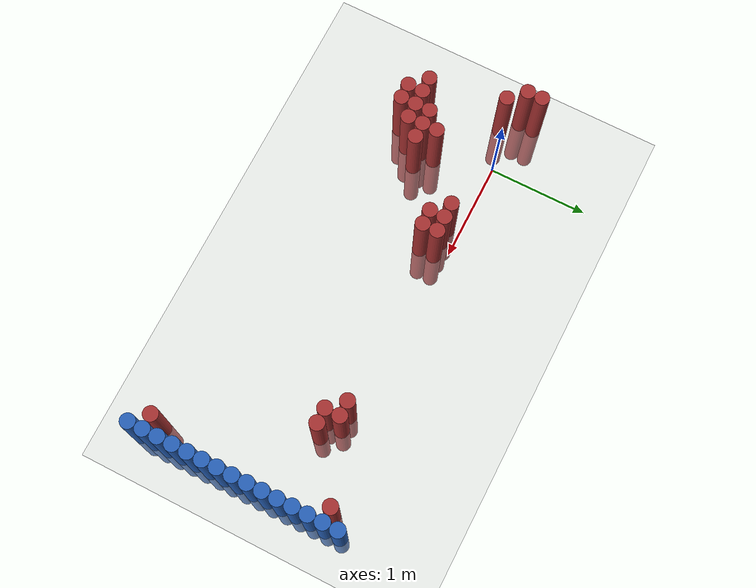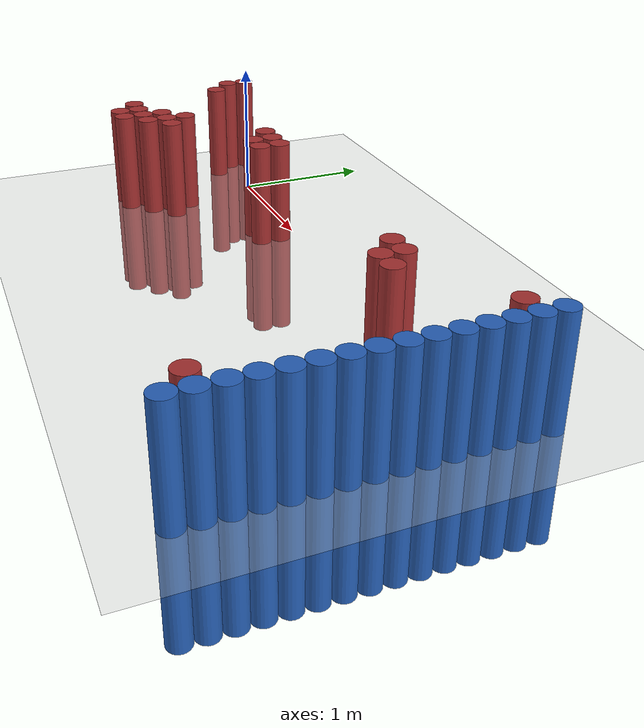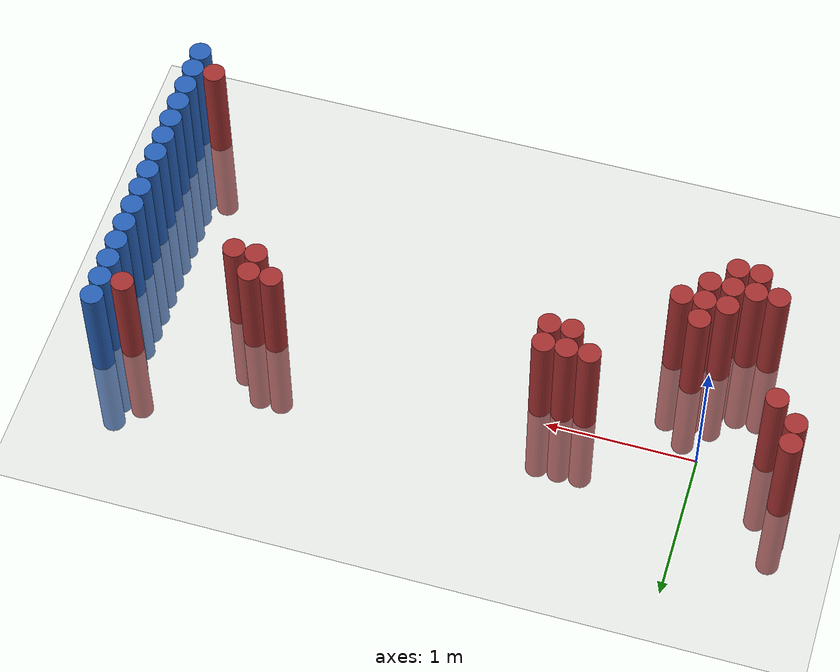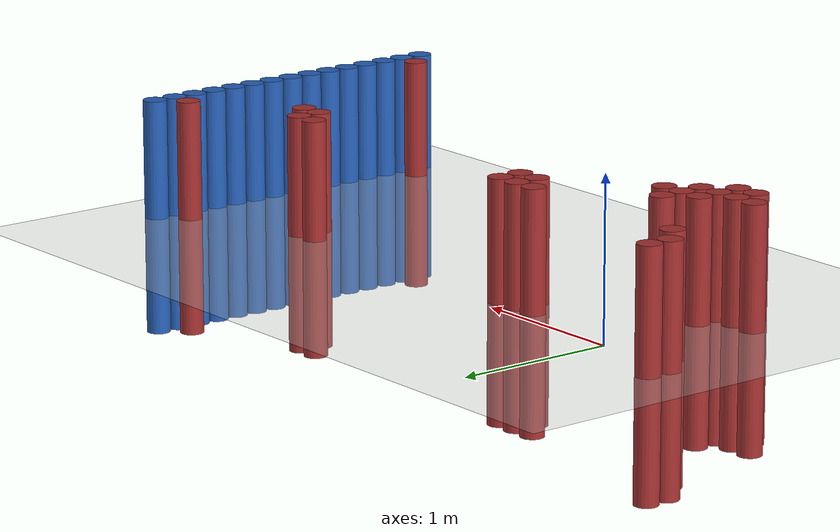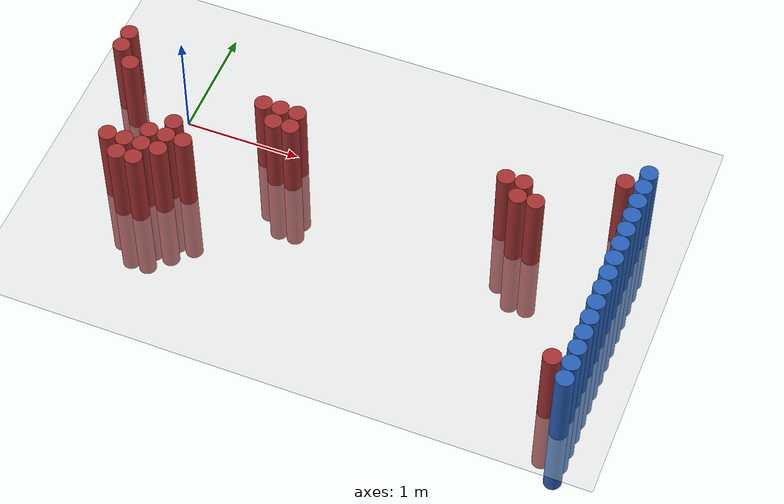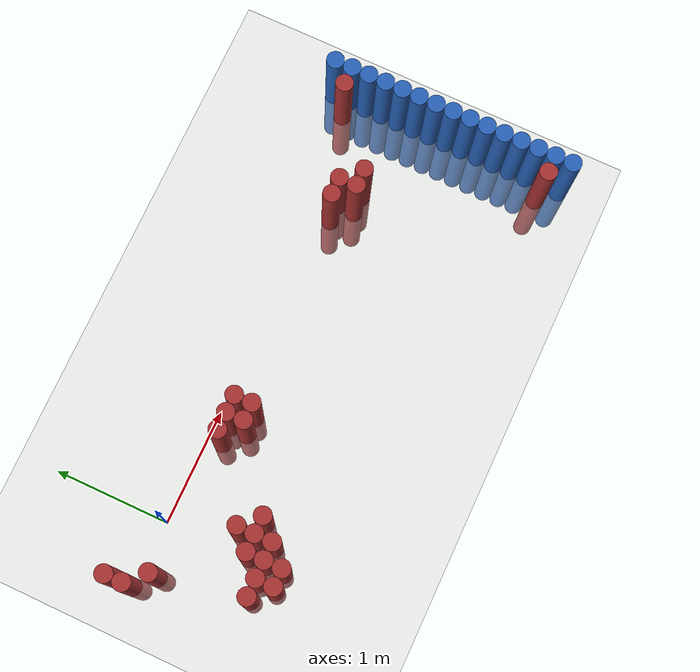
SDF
<sdf version="1.6">
 <world name="default">
  <model name="ground_plane">
   <static>1</static>
   <link name="link">
    <collision name="collision">
     <geometry><plane><normal>0 0 1</normal><size>100 100</size></plane></geometry>
     <surface><friction><ode><mu>100</mu><mu2>50</mu2></ode></friction></surface>
    </collision>
    <visual name="visual">
     <cast_shadows>0</cast_shadows>
     <geometry><plane><normal>0 0 1</normal><size>100 100</size></plane></geometry>
     <material>
      <script><uri>file://media/materials/scripts/gazebo.material</uri><name>Gazebo/Grey</name></script>
     </material>
    </visual>
   </link>
  </model>
  <model name="unit_cylinder_92">
   <static>1</static>
   <pose>3.925000 -1.625000 0.000000 0.000000 0.000000 0.000000</pose>
   <link name="link">
    <inertial>
     <mass>1</mass>
     <inertia><ixx>0.145833</ixx><ixy>0</ixy><ixz>0</ixz><iyy>0.145833</iyy><iyz>0</iyz><izz>0.125</izz></inertia>
    </inertial>
    <collision name="collision">
     <geometry><cylinder><radius>0.075000</radius><length>1.5</length></cylinder></geometry>
    </collision>
    <visual name="visual">
     <geometry><cylinder><radius>0.075000</radius><length>1.5</length></cylinder></geometry>
     <material>
      <ambient>0.152000 0.379000 0.720000 1</ambient>
      <diffuse>0.152000 0.379000 0.720000 1</diffuse>
     </material>
     <material>
      <script><name>Gazebo/Grey</name><uri>file://media/materials/scripts/gazebo.material</uri></script>
     </material>
    </visual>
   </link>
  </model>
  <model name="unit_cylinder_94">
   <static>1</static>
   <pose>3.925000 -1.475000 0.000000 0.000000 0.000000 0.000000</pose>
   <link name="link">
    <inertial>
     <mass>1</mass>
     <inertia><ixx>0.145833</ixx><ixy>0</ixy><ixz>0</ixz><iyy>0.145833</iyy><iyz>0</iyz><izz>0.125</izz></inertia>
    </inertial>
    <collision name="collision">
     <geometry><cylinder><radius>0.075000</radius><length>1.5</length></cylinder></geometry>
    </collision>
    <visual name="visual">
     <geometry><cylinder><radius>0.075000</radius><length>1.5</length></cylinder></geometry>
     <material>
      <ambient>0.152000 0.379000 0.720000 1</ambient>
      <diffuse>0.152000 0.379000 0.720000 1</diffuse>
     </material>
     <material>
      <script><name>Gazebo/Grey</name><uri>file://media/materials/scripts/gazebo.material</uri></script>
     </material>
    </visual>
   </link>
  </model>
  <model name="unit_cylinder_96">
   <static>1</static>
   <pose>3.925000 -1.325000 0.000000 0.000000 0.000000 0.000000</pose>
   <link name="link">
    <inertial>
     <mass>1</mass>
     <inertia><ixx>0.145833</ixx><ixy>0</ixy><ixz>0</ixz><iyy>0.145833</iyy><iyz>0</iyz><izz>0.125</izz></inertia>
    </inertial>
    <collision name="collision">
     <geometry><cylinder><radius>0.075000</radius><length>1.5</length></cylinder></geometry>
    </collision>
    <visual name="visual">
     <geometry><cylinder><radius>0.075000</radius><length>1.5</length></cylinder></geometry>
     <material>
      <ambient>0.152000 0.379000 0.720000 1</ambient>
      <diffuse>0.152000 0.379000 0.720000 1</diffuse>
     </material>
     <material>
      <script><name>Gazebo/Grey</name><uri>file://media/materials/scripts/gazebo.material</uri></script>
     </material>
    </visual>
   </link>
  </model>
  <model name="unit_cylinder_98">
   <static>1</static>
   <pose>3.925000 -1.175000 0.000000 0.000000 0.000000 0.000000</pose>
   <link name="link">
    <inertial>
     <mass>1</mass>
     <inertia><ixx>0.145833</ixx><ixy>0</ixy><ixz>0</ixz><iyy>0.145833</iyy><iyz>0</iyz><izz>0.125</izz></inertia>
    </inertial>
    <collision name="collision">
     <geometry><cylinder><radius>0.075000</radius><length>1.5</length></cylinder></geometry>
    </collision>
    <visual name="visual">
     <geometry><cylinder><radius>0.075000</radius><length>1.5</length></cylinder></geometry>
     <material>
      <ambient>0.152000 0.379000 0.720000 1</ambient>
      <diffuse>0.152000 0.379000 0.720000 1</diffuse>
     </material>
     <material>
      <script><name>Gazebo/Grey</name><uri>file://media/materials/scripts/gazebo.material</uri></script>
     </material>
    </visual>
   </link>
  </model>
  <model name="unit_cylinder_100">
   <static>1</static>
   <pose>3.925000 -1.025000 0.000000 0.000000 0.000000 0.000000</pose>
   <link name="link">
    <inertial>
     <mass>1</mass>
     <inertia><ixx>0.145833</ixx><ixy>0</ixy><ixz>0</ixz><iyy>0.145833</iyy><iyz>0</iyz><izz>0.125</izz></inertia>
    </inertial>
    <collision name="collision">
     <geometry><cylinder><radius>0.075000</radius><length>1.5</length></cylinder></geometry>
    </collision>
    <visual name="visual">
     <geometry><cylinder><radius>0.075000</radius><length>1.5</length></cylinder></geometry>
     <material>
      <ambient>0.152000 0.379000 0.720000 1</ambient>
      <diffuse>0.152000 0.379000 0.720000 1</diffuse>
     </material>
     <material>
      <script><name>Gazebo/Grey</name><uri>file://media/materials/scripts/gazebo.material</uri></script>
     </material>
    </visual>
   </link>
  </model>
  <model name="unit_cylinder_102">
   <static>1</static>
   <pose>3.925000 -0.875000 0.000000 0.000000 0.000000 0.000000</pose>
   <link name="link">
    <inertial>
     <mass>1</mass>
     <inertia><ixx>0.145833</ixx><ixy>0</ixy><ixz>0</ixz><iyy>0.145833</iyy><iyz>0</iyz><izz>0.125</izz></inertia>
    </inertial>
    <collision name="collision">
     <geometry><cylinder><radius>0.075000</radius><length>1.5</length></cylinder></geometry>
    </collision>
    <visual name="visual">
     <geometry><cylinder><radius>0.075000</radius><length>1.5</length></cylinder></geometry>
     <material>
      <ambient>0.152000 0.379000 0.720000 1</ambient>
      <diffuse>0.152000 0.379000 0.720000 1</diffuse>
     </material>
     <material>
      <script><name>Gazebo/Grey</name><uri>file://media/materials/scripts/gazebo.material</uri></script>
     </material>
    </visual>
   </link>
  </model>
  <model name="unit_cylinder_104">
   <static>1</static>
   <pose>3.925000 -0.725000 0.000000 0.000000 0.000000 0.000000</pose>
   <link name="link">
    <inertial>
     <mass>1</mass>
     <inertia><ixx>0.145833</ixx><ixy>0</ixy><ixz>0</ixz><iyy>0.145833</iyy><iyz>0</iyz><izz>0.125</izz></inertia>
    </inertial>
    <collision name="collision">
     <geometry><cylinder><radius>0.075000</radius><length>1.5</length></cylinder></geometry>
    </collision>
    <visual name="visual">
     <geometry><cylinder><radius>0.075000</radius><length>1.5</length></cylinder></geometry>
     <material>
      <ambient>0.152000 0.379000 0.720000 1</ambient>
      <diffuse>0.152000 0.379000 0.720000 1</diffuse>
     </material>
     <material>
      <script><name>Gazebo/Grey</name><uri>file://media/materials/scripts/gazebo.material</uri></script>
     </material>
    </visual>
   </link>
  </model>
  <model name="unit_cylinder_106">
   <static>1</static>
   <pose>3.925000 -0.575000 0.000000 0.000000 0.000000 0.000000</pose>
   <link name="link">
    <inertial>
     <mass>1</mass>
     <inertia><ixx>0.145833</ixx><ixy>0</ixy><ixz>0</ixz><iyy>0.145833</iyy><iyz>0</iyz><izz>0.125</izz></inertia>
    </inertial>
    <collision name="collision">
     <geometry><cylinder><radius>0.075000</radius><length>1.5</length></cylinder></geometry>
    </collision>
    <visual name="visual">
     <geometry><cylinder><radius>0.075000</radius><length>1.5</length></cylinder></geometry>
     <material>
      <ambient>0.152000 0.379000 0.720000 1</ambient>
      <diffuse>0.152000 0.379000 0.720000 1</diffuse>
     </material>
     <material>
      <script><name>Gazebo/Grey</name><uri>file://media/materials/scripts/gazebo.material</uri></script>
     </material>
    </visual>
   </link>
  </model>
  <model name="unit_cylinder_108">
   <static>1</static>
   <pose>3.925000 -0.425000 0.000000 0.000000 0.000000 0.000000</pose>
   <link name="link">
    <inertial>
     <mass>1</mass>
     <inertia><ixx>0.145833</ixx><ixy>0</ixy><ixz>0</ixz><iyy>0.145833</iyy><iyz>0</iyz><izz>0.125</izz></inertia>
    </inertial>
    <collision name="collision">
     <geometry><cylinder><radius>0.075000</radius><length>1.5</length></cylinder></geometry>
    </collision>
    <visual name="visual">
     <geometry><cylinder><radius>0.075000</radius><length>1.5</length></cylinder></geometry>
     <material>
      <ambient>0.152000 0.379000 0.720000 1</ambient>
      <diffuse>0.152000 0.379000 0.720000 1</diffuse>
     </material>
     <material>
      <script><name>Gazebo/Grey</name><uri>file://media/materials/scripts/gazebo.material</uri></script>
     </material>
    </visual>
   </link>
  </model>
  <model name="unit_cylinder_110">
   <static>1</static>
   <pose>3.925000 -0.275000 0.000000 0.000000 0.000000 0.000000</pose>
   <link name="link">
    <inertial>
     <mass>1</mass>
     <inertia><ixx>0.145833</ixx><ixy>0</ixy><ixz>0</ixz><iyy>0.145833</iyy><iyz>0</iyz><izz>0.125</izz></inertia>
    </inertial>
    <collision name="collision">
     <geometry><cylinder><radius>0.075000</radius><length>1.5</length></cylinder></geometry>
    </collision>
    <visual name="visual">
     <geometry><cylinder><radius>0.075000</radius><length>1.5</length></cylinder></geometry>
     <material>
      <ambient>0.152000 0.379000 0.720000 1</ambient>
      <diffuse>0.152000 0.379000 0.720000 1</diffuse>
     </material>
     <material>
      <script><name>Gazebo/Grey</name><uri>file://media/materials/scripts/gazebo.material</uri></script>
     </material>
    </visual>
   </link>
  </model>
  <model name="unit_cylinder_112">
   <static>1</static>
   <pose>3.925000 -0.125000 0.000000 0.000000 0.000000 0.000000</pose>
   <link name="link">
    <inertial>
     <mass>1</mass>
     <inertia><ixx>0.145833</ixx><ixy>0</ixy><ixz>0</ixz><iyy>0.145833</iyy><iyz>0</iyz><izz>0.125</izz></inertia>
    </inertial>
    <collision name="collision">
     <geometry><cylinder><radius>0.075000</radius><length>1.5</length></cylinder></geometry>
    </collision>
    <visual name="visual">
     <geometry><cylinder><radius>0.075000</radius><length>1.5</length></cylinder></geometry>
     <material>
      <ambient>0.152000 0.379000 0.720000 1</ambient>
      <diffuse>0.152000 0.379000 0.720000 1</diffuse>
     </material>
     <material>
      <script><name>Gazebo/Grey</name><uri>file://media/materials/scripts/gazebo.material</uri></script>
     </material>
    </visual>
   </link>
  </model>
  <model name="unit_cylinder_114">
   <static>1</static>
   <pose>3.925000 0.025000 0.000000 0.000000 0.000000 0.000000</pose>
   <link name="link">
    <inertial>
     <mass>1</mass>
     <inertia><ixx>0.145833</ixx><ixy>0</ixy><ixz>0</ixz><iyy>0.145833</iyy><iyz>0</iyz><izz>0.125</izz></inertia>
    </inertial>
    <collision name="collision">
     <geometry><cylinder><radius>0.075000</radius><length>1.5</length></cylinder></geometry>
    </collision>
    <visual name="visual">
     <geometry><cylinder><radius>0.075000</radius><length>1.5</length></cylinder></geometry>
     <material>
      <ambient>0.152000 0.379000 0.720000 1</ambient>
      <diffuse>0.152000 0.379000 0.720000 1</diffuse>
     </material>
     <material>
      <script><name>Gazebo/Grey</name><uri>file://media/materials/scripts/gazebo.material</uri></script>
     </material>
    </visual>
   </link>
  </model>
  <model name="unit_cylinder_116">
   <static>1</static>
   <pose>3.925000 0.175000 0.000000 0.000000 0.000000 0.000000</pose>
   <link name="link">
    <inertial>
     <mass>1</mass>
     <inertia><ixx>0.145833</ixx><ixy>0</ixy><ixz>0</ixz><iyy>0.145833</iyy><iyz>0</iyz><izz>0.125</izz></inertia>
    </inertial>
    <collision name="collision">
     <geometry><cylinder><radius>0.075000</radius><length>1.5</length></cylinder></geometry>
    </collision>
    <visual name="visual">
     <geometry><cylinder><radius>0.075000</radius><length>1.5</length></cylinder></geometry>
     <material>
      <ambient>0.152000 0.379000 0.720000 1</ambient>
      <diffuse>0.152000 0.379000 0.720000 1</diffuse>
     </material>
     <material>
      <script><name>Gazebo/Grey</name><uri>file://media/materials/scripts/gazebo.material</uri></script>
     </material>
    </visual>
   </link>
  </model>
  <model name="unit_cylinder_118">
   <static>1</static>
   <pose>3.925000 0.325000 0.000000 0.000000 0.000000 0.000000</pose>
   <link name="link">
    <inertial>
     <mass>1</mass>
     <inertia><ixx>0.145833</ixx><ixy>0</ixy><ixz>0</ixz><iyy>0.145833</iyy><iyz>0</iyz><izz>0.125</izz></inertia>
    </inertial>
    <collision name="collision">
     <geometry><cylinder><radius>0.075000</radius><length>1.5</length></cylinder></geometry>
    </collision>
    <visual name="visual">
     <geometry><cylinder><radius>0.075000</radius><length>1.5</length></cylinder></geometry>
     <material>
      <ambient>0.152000 0.379000 0.720000 1</ambient>
      <diffuse>0.152000 0.379000 0.720000 1</diffuse>
     </material>
     <material>
      <script><name>Gazebo/Grey</name><uri>file://media/materials/scripts/gazebo.material</uri></script>
     </material>
    </visual>
   </link>
  </model>
  <model name="unit_cylinder_348">
   <static>1</static>
   <pose>-0.575000 0.025000 0.000000 0.000000 0.000000 0.000000</pose>
   <link name="link">
    <inertial>
     <mass>1</mass>
     <inertia><ixx>0.145833</ixx><ixy>0</ixy><ixz>0</ixz><iyy>0.145833</iyy><iyz>0</iyz><izz>0.125</izz></inertia>
    </inertial>
    <collision name="collision">
     <geometry><cylinder><radius>0.075000</radius><length>1.5</length></cylinder></geometry>
    </collision>
    <visual name="visual">
     <geometry><cylinder><radius>0.075000</radius><length>1.5</length></cylinder></geometry>
     <material>
      <ambient>0.648000 0.192000 0.192000 1</ambient>
      <diffuse>0.648000 0.192000 0.192000 1</diffuse>
     </material>
     <material>
      <script><name>Gazebo/Grey</name><uri>file://media/materials/scripts/gazebo.material</uri></script>
     </material>
    </visual>
   </link>
  </model>
  <model name="unit_cylinder_349">
   <static>1</static>
   <pose>-0.575000 0.175000 0.000000 0.000000 0.000000 0.000000</pose>
   <link name="link">
    <inertial>
     <mass>1</mass>
     <inertia><ixx>0.145833</ixx><ixy>0</ixy><ixz>0</ixz><iyy>0.145833</iyy><iyz>0</iyz><izz>0.125</izz></inertia>
    </inertial>
    <collision name="collision">
     <geometry><cylinder><radius>0.075000</radius><length>1.5</length></cylinder></geometry>
    </collision>
    <visual name="visual">
     <geometry><cylinder><radius>0.075000</radius><length>1.5</length></cylinder></geometry>
     <material>
      <ambient>0.648000 0.192000 0.192000 1</ambient>
      <diffuse>0.648000 0.192000 0.192000 1</diffuse>
     </material>
     <material>
      <script><name>Gazebo/Grey</name><uri>file://media/materials/scripts/gazebo.material</uri></script>
     </material>
    </visual>
   </link>
  </model>
  <model name="unit_cylinder_351">
   <static>1</static>
   <pose>-0.425000 -0.125000 0.000000 0.000000 0.000000 0.000000</pose>
   <link name="link">
    <inertial>
     <mass>1</mass>
     <inertia><ixx>0.145833</ixx><ixy>0</ixy><ixz>0</ixz><iyy>0.145833</iyy><iyz>0</iyz><izz>0.125</izz></inertia>
    </inertial>
    <collision name="collision">
     <geometry><cylinder><radius>0.075000</radius><length>1.5</length></cylinder></geometry>
    </collision>
    <visual name="visual">
     <geometry><cylinder><radius>0.075000</radius><length>1.5</length></cylinder></geometry>
     <material>
      <ambient>0.648000 0.192000 0.192000 1</ambient>
      <diffuse>0.648000 0.192000 0.192000 1</diffuse>
     </material>
     <material>
      <script><name>Gazebo/Grey</name><uri>file://media/materials/scripts/gazebo.material</uri></script>
     </material>
    </visual>
   </link>
  </model>
  <model name="unit_cylinder_355">
   <static>1</static>
   <pose>-0.275000 -0.875000 0.000000 0.000000 0.000000 0.000000</pose>
   <link name="link">
    <inertial>
     <mass>1</mass>
     <inertia><ixx>0.145833</ixx><ixy>0</ixy><ixz>0</ixz><iyy>0.145833</iyy><iyz>0</iyz><izz>0.125</izz></inertia>
    </inertial>
    <collision name="collision">
     <geometry><cylinder><radius>0.075000</radius><length>1.5</length></cylinder></geometry>
    </collision>
    <visual name="visual">
     <geometry><cylinder><radius>0.075000</radius><length>1.5</length></cylinder></geometry>
     <material>
      <ambient>0.648000 0.192000 0.192000 1</ambient>
      <diffuse>0.648000 0.192000 0.192000 1</diffuse>
     </material>
     <material>
      <script><name>Gazebo/Grey</name><uri>file://media/materials/scripts/gazebo.material</uri></script>
     </material>
    </visual>
   </link>
  </model>
  <model name="unit_cylinder_360">
   <static>1</static>
   <pose>-0.125000 -1.025000 0.000000 0.000000 0.000000 0.000000</pose>
   <link name="link">
    <inertial>
     <mass>1</mass>
     <inertia><ixx>0.145833</ixx><ixy>0</ixy><ixz>0</ixz><iyy>0.145833</iyy><iyz>0</iyz><izz>0.125</izz></inertia>
    </inertial>
    <collision name="collision">
     <geometry><cylinder><radius>0.075000</radius><length>1.5</length></cylinder></geometry>
    </collision>
    <visual name="visual">
     <geometry><cylinder><radius>0.075000</radius><length>1.5</length></cylinder></geometry>
     <material>
      <ambient>0.648000 0.192000 0.192000 1</ambient>
      <diffuse>0.648000 0.192000 0.192000 1</diffuse>
     </material>
     <material>
      <script><name>Gazebo/Grey</name><uri>file://media/materials/scripts/gazebo.material</uri></script>
     </material>
    </visual>
   </link>
  </model>
  <model name="unit_cylinder_361">
   <static>1</static>
   <pose>-0.125000 -0.875000 0.000000 0.000000 0.000000 0.000000</pose>
   <link name="link">
    <inertial>
     <mass>1</mass>
     <inertia><ixx>0.145833</ixx><ixy>0</ixy><ixz>0</ixz><iyy>0.145833</iyy><iyz>0</iyz><izz>0.125</izz></inertia>
    </inertial>
    <collision name="collision">
     <geometry><cylinder><radius>0.075000</radius><length>1.5</length></cylinder></geometry>
    </collision>
    <visual name="visual">
     <geometry><cylinder><radius>0.075000</radius><length>1.5</length></cylinder></geometry>
     <material>
      <ambient>0.648000 0.192000 0.192000 1</ambient>
      <diffuse>0.648000 0.192000 0.192000 1</diffuse>
     </material>
     <material>
      <script><name>Gazebo/Grey</name><uri>file://media/materials/scripts/gazebo.material</uri></script>
     </material>
    </visual>
   </link>
  </model>
  <model name="unit_cylinder_363">
   <static>1</static>
   <pose>0.025000 -1.025000 0.000000 0.000000 0.000000 0.000000</pose>
   <link name="link">
    <inertial>
     <mass>1</mass>
     <inertia><ixx>0.145833</ixx><ixy>0</ixy><ixz>0</ixz><iyy>0.145833</iyy><iyz>0</iyz><izz>0.125</izz></inertia>
    </inertial>
    <collision name="collision">
     <geometry><cylinder><radius>0.075000</radius><length>1.5</length></cylinder></geometry>
    </collision>
    <visual name="visual">
     <geometry><cylinder><radius>0.075000</radius><length>1.5</length></cylinder></geometry>
     <material>
      <ambient>0.648000 0.192000 0.192000 1</ambient>
      <diffuse>0.648000 0.192000 0.192000 1</diffuse>
     </material>
     <material>
      <script><name>Gazebo/Grey</name><uri>file://media/materials/scripts/gazebo.material</uri></script>
     </material>
    </visual>
   </link>
  </model>
  <model name="unit_cylinder_364">
   <static>1</static>
   <pose>0.025000 -0.875000 0.000000 0.000000 0.000000 0.000000</pose>
   <link name="link">
    <inertial>
     <mass>1</mass>
     <inertia><ixx>0.145833</ixx><ixy>0</ixy><ixz>0</ixz><iyy>0.145833</iyy><iyz>0</iyz><izz>0.125</izz></inertia>
    </inertial>
    <collision name="collision">
     <geometry><cylinder><radius>0.075000</radius><length>1.5</length></cylinder></geometry>
    </collision>
    <visual name="visual">
     <geometry><cylinder><radius>0.075000</radius><length>1.5</length></cylinder></geometry>
     <material>
      <ambient>0.648000 0.192000 0.192000 1</ambient>
      <diffuse>0.648000 0.192000 0.192000 1</diffuse>
     </material>
     <material>
      <script><name>Gazebo/Grey</name><uri>file://media/materials/scripts/gazebo.material</uri></script>
     </material>
    </visual>
   </link>
  </model>
  <model name="unit_cylinder_365">
   <static>1</static>
   <pose>0.025000 -0.725000 0.000000 0.000000 0.000000 0.000000</pose>
   <link name="link">
    <inertial>
     <mass>1</mass>
     <inertia><ixx>0.145833</ixx><ixy>0</ixy><ixz>0</ixz><iyy>0.145833</iyy><iyz>0</iyz><izz>0.125</izz></inertia>
    </inertial>
    <collision name="collision">
     <geometry><cylinder><radius>0.075000</radius><length>1.5</length></cylinder></geometry>
    </collision>
    <visual name="visual">
     <geometry><cylinder><radius>0.075000</radius><length>1.5</length></cylinder></geometry>
     <material>
      <ambient>0.648000 0.192000 0.192000 1</ambient>
      <diffuse>0.648000 0.192000 0.192000 1</diffuse>
     </material>
     <material>
      <script><name>Gazebo/Grey</name><uri>file://media/materials/scripts/gazebo.material</uri></script>
     </material>
    </visual>
   </link>
  </model>
  <model name="unit_cylinder_366">
   <static>1</static>
   <pose>0.175000 -0.875000 0.000000 0.000000 0.000000 0.000000</pose>
   <link name="link">
    <inertial>
     <mass>1</mass>
     <inertia><ixx>0.145833</ixx><ixy>0</ixy><ixz>0</ixz><iyy>0.145833</iyy><iyz>0</iyz><izz>0.125</izz></inertia>
    </inertial>
    <collision name="collision">
     <geometry><cylinder><radius>0.075000</radius><length>1.5</length></cylinder></geometry>
    </collision>
    <visual name="visual">
     <geometry><cylinder><radius>0.075000</radius><length>1.5</length></cylinder></geometry>
     <material>
      <ambient>0.648000 0.192000 0.192000 1</ambient>
      <diffuse>0.648000 0.192000 0.192000 1</diffuse>
     </material>
     <material>
      <script><name>Gazebo/Grey</name><uri>file://media/materials/scripts/gazebo.material</uri></script>
     </material>
    </visual>
   </link>
  </model>
  <model name="unit_cylinder_367">
   <static>1</static>
   <pose>0.175000 -0.725000 0.000000 0.000000 0.000000 0.000000</pose>
   <link name="link">
    <inertial>
     <mass>1</mass>
     <inertia><ixx>0.145833</ixx><ixy>0</ixy><ixz>0</ixz><iyy>0.145833</iyy><iyz>0</iyz><izz>0.125</izz></inertia>
    </inertial>
    <collision name="collision">
     <geometry><cylinder><radius>0.075000</radius><length>1.5</length></cylinder></geometry>
    </collision>
    <visual name="visual">
     <geometry><cylinder><radius>0.075000</radius><length>1.5</length></cylinder></geometry>
     <material>
      <ambient>0.648000 0.192000 0.192000 1</ambient>
      <diffuse>0.648000 0.192000 0.192000 1</diffuse>
     </material>
     <material>
      <script><name>Gazebo/Grey</name><uri>file://media/materials/scripts/gazebo.material</uri></script>
     </material>
    </visual>
   </link>
  </model>
  <model name="unit_cylinder_368">
   <static>1</static>
   <pose>0.175000 -0.575000 0.000000 0.000000 0.000000 0.000000</pose>
   <link name="link">
    <inertial>
     <mass>1</mass>
     <inertia><ixx>0.145833</ixx><ixy>0</ixy><ixz>0</ixz><iyy>0.145833</iyy><iyz>0</iyz><izz>0.125</izz></inertia>
    </inertial>
    <collision name="collision">
     <geometry><cylinder><radius>0.075000</radius><length>1.5</length></cylinder></geometry>
    </collision>
    <visual name="visual">
     <geometry><cylinder><radius>0.075000</radius><length>1.5</length></cylinder></geometry>
     <material>
      <ambient>0.648000 0.192000 0.192000 1</ambient>
      <diffuse>0.648000 0.192000 0.192000 1</diffuse>
     </material>
     <material>
      <script><name>Gazebo/Grey</name><uri>file://media/materials/scripts/gazebo.material</uri></script>
     </material>
    </visual>
   </link>
  </model>
  <model name="unit_cylinder_369">
   <static>1</static>
   <pose>0.325000 -0.725000 0.000000 0.000000 0.000000 0.000000</pose>
   <link name="link">
    <inertial>
     <mass>1</mass>
     <inertia><ixx>0.145833</ixx><ixy>0</ixy><ixz>0</ixz><iyy>0.145833</iyy><iyz>0</iyz><izz>0.125</izz></inertia>
    </inertial>
    <collision name="collision">
     <geometry><cylinder><radius>0.075000</radius><length>1.5</length></cylinder></geometry>
    </collision>
    <visual name="visual">
     <geometry><cylinder><radius>0.075000</radius><length>1.5</length></cylinder></geometry>
     <material>
      <ambient>0.648000 0.192000 0.192000 1</ambient>
      <diffuse>0.648000 0.192000 0.192000 1</diffuse>
     </material>
     <material>
      <script><name>Gazebo/Grey</name><uri>file://media/materials/scripts/gazebo.material</uri></script>
     </material>
    </visual>
   </link>
  </model>
  <model name="unit_cylinder_379">
   <static>1</static>
   <pose>0.775000 -0.125000 0.000000 0.000000 0.000000 0.000000</pose>
   <link name="link">
    <inertial>
     <mass>1</mass>
     <inertia><ixx>0.145833</ixx><ixy>0</ixy><ixz>0</ixz><iyy>0.145833</iyy><iyz>0</iyz><izz>0.125</izz></inertia>
    </inertial>
    <collision name="collision">
     <geometry><cylinder><radius>0.075000</radius><length>1.5</length></cylinder></geometry>
    </collision>
    <visual name="visual">
     <geometry><cylinder><radius>0.075000</radius><length>1.5</length></cylinder></geometry>
     <material>
      <ambient>0.648000 0.192000 0.192000 1</ambient>
      <diffuse>0.648000 0.192000 0.192000 1</diffuse>
     </material>
     <material>
      <script><name>Gazebo/Grey</name><uri>file://media/materials/scripts/gazebo.material</uri></script>
     </material>
    </visual>
   </link>
  </model>
  <model name="unit_cylinder_385">
   <static>1</static>
   <pose>0.925000 -0.275000 0.000000 0.000000 0.000000 0.000000</pose>
   <link name="link">
    <inertial>
     <mass>1</mass>
     <inertia><ixx>0.145833</ixx><ixy>0</ixy><ixz>0</ixz><iyy>0.145833</iyy><iyz>0</iyz><izz>0.125</izz></inertia>
    </inertial>
    <collision name="collision">
     <geometry><cylinder><radius>0.075000</radius><length>1.5</length></cylinder></geometry>
    </collision>
    <visual name="visual">
     <geometry><cylinder><radius>0.075000</radius><length>1.5</length></cylinder></geometry>
     <material>
      <ambient>0.648000 0.192000 0.192000 1</ambient>
      <diffuse>0.648000 0.192000 0.192000 1</diffuse>
     </material>
     <material>
      <script><name>Gazebo/Grey</name><uri>file://media/materials/scripts/gazebo.material</uri></script>
     </material>
    </visual>
   </link>
  </model>
  <model name="unit_cylinder_386">
   <static>1</static>
   <pose>0.925000 -0.125000 0.000000 0.000000 0.000000 0.000000</pose>
   <link name="link">
    <inertial>
     <mass>1</mass>
     <inertia><ixx>0.145833</ixx><ixy>0</ixy><ixz>0</ixz><iyy>0.145833</iyy><iyz>0</iyz><izz>0.125</izz></inertia>
    </inertial>
    <collision name="collision">
     <geometry><cylinder><radius>0.075000</radius><length>1.5</length></cylinder></geometry>
    </collision>
    <visual name="visual">
     <geometry><cylinder><radius>0.075000</radius><length>1.5</length></cylinder></geometry>
     <material>
      <ambient>0.648000 0.192000 0.192000 1</ambient>
      <diffuse>0.648000 0.192000 0.192000 1</diffuse>
     </material>
     <material>
      <script><name>Gazebo/Grey</name><uri>file://media/materials/scripts/gazebo.material</uri></script>
     </material>
    </visual>
   </link>
  </model>
  <model name="unit_cylinder_388">
   <static>1</static>
   <pose>1.075000 -0.275000 0.000000 0.000000 0.000000 0.000000</pose>
   <link name="link">
    <inertial>
     <mass>1</mass>
     <inertia><ixx>0.145833</ixx><ixy>0</ixy><ixz>0</ixz><iyy>0.145833</iyy><iyz>0</iyz><izz>0.125</izz></inertia>
    </inertial>
    <collision name="collision">
     <geometry><cylinder><radius>0.075000</radius><length>1.5</length></cylinder></geometry>
    </collision>
    <visual name="visual">
     <geometry><cylinder><radius>0.075000</radius><length>1.5</length></cylinder></geometry>
     <material>
      <ambient>0.648000 0.192000 0.192000 1</ambient>
      <diffuse>0.648000 0.192000 0.192000 1</diffuse>
     </material>
     <material>
      <script><name>Gazebo/Grey</name><uri>file://media/materials/scripts/gazebo.material</uri></script>
     </material>
    </visual>
   </link>
  </model>
  <model name="unit_cylinder_389">
   <static>1</static>
   <pose>1.075000 -0.125000 0.000000 0.000000 0.000000 0.000000</pose>
   <link name="link">
    <inertial>
     <mass>1</mass>
     <inertia><ixx>0.145833</ixx><ixy>0</ixy><ixz>0</ixz><iyy>0.145833</iyy><iyz>0</iyz><izz>0.125</izz></inertia>
    </inertial>
    <collision name="collision">
     <geometry><cylinder><radius>0.075000</radius><length>1.5</length></cylinder></geometry>
    </collision>
    <visual name="visual">
     <geometry><cylinder><radius>0.075000</radius><length>1.5</length></cylinder></geometry>
     <material>
      <ambient>0.648000 0.192000 0.192000 1</ambient>
      <diffuse>0.648000 0.192000 0.192000 1</diffuse>
     </material>
     <material>
      <script><name>Gazebo/Grey</name><uri>file://media/materials/scripts/gazebo.material</uri></script>
     </material>
    </visual>
   </link>
  </model>
  <model name="unit_cylinder_395">
   <static>1</static>
   <pose>2.875000 -0.125000 0.000000 0.000000 0.000000 0.000000</pose>
   <link name="link">
    <inertial>
     <mass>1</mass>
     <inertia><ixx>0.145833</ixx><ixy>0</ixy><ixz>0</ixz><iyy>0.145833</iyy><iyz>0</iyz><izz>0.125</izz></inertia>
    </inertial>
    <collision name="collision">
     <geometry><cylinder><radius>0.075000</radius><length>1.5</length></cylinder></geometry>
    </collision>
    <visual name="visual">
     <geometry><cylinder><radius>0.075000</radius><length>1.5</length></cylinder></geometry>
     <material>
      <ambient>0.648000 0.192000 0.192000 1</ambient>
      <diffuse>0.648000 0.192000 0.192000 1</diffuse>
     </material>
     <material>
      <script><name>Gazebo/Grey</name><uri>file://media/materials/scripts/gazebo.material</uri></script>
     </material>
    </visual>
   </link>
  </model>
  <model name="unit_cylinder_396">
   <static>1</static>
   <pose>3.025000 -0.275000 0.000000 0.000000 0.000000 0.000000</pose>
   <link name="link">
    <inertial>
     <mass>1</mass>
     <inertia><ixx>0.145833</ixx><ixy>0</ixy><ixz>0</ixz><iyy>0.145833</iyy><iyz>0</iyz><izz>0.125</izz></inertia>
    </inertial>
    <collision name="collision">
     <geometry><cylinder><radius>0.075000</radius><length>1.5</length></cylinder></geometry>
    </collision>
    <visual name="visual">
     <geometry><cylinder><radius>0.075000</radius><length>1.5</length></cylinder></geometry>
     <material>
      <ambient>0.648000 0.192000 0.192000 1</ambient>
      <diffuse>0.648000 0.192000 0.192000 1</diffuse>
     </material>
     <material>
      <script><name>Gazebo/Grey</name><uri>file://media/materials/scripts/gazebo.material</uri></script>
     </material>
    </visual>
   </link>
  </model>
  <model name="unit_cylinder_397">
   <static>1</static>
   <pose>3.025000 -0.125000 0.000000 0.000000 0.000000 0.000000</pose>
   <link name="link">
    <inertial>
     <mass>1</mass>
     <inertia><ixx>0.145833</ixx><ixy>0</ixy><ixz>0</ixz><iyy>0.145833</iyy><iyz>0</iyz><izz>0.125</izz></inertia>
    </inertial>
    <collision name="collision">
     <geometry><cylinder><radius>0.075000</radius><length>1.5</length></cylinder></geometry>
    </collision>
    <visual name="visual">
     <geometry><cylinder><radius>0.075000</radius><length>1.5</length></cylinder></geometry>
     <material>
      <ambient>0.648000 0.192000 0.192000 1</ambient>
      <diffuse>0.648000 0.192000 0.192000 1</diffuse>
     </material>
     <material>
      <script><name>Gazebo/Grey</name><uri>file://media/materials/scripts/gazebo.material</uri></script>
     </material>
    </visual>
   </link>
  </model>
  <model name="unit_cylinder_399">
   <static>1</static>
   <pose>3.175000 -0.275000 0.000000 0.000000 0.000000 0.000000</pose>
   <link name="link">
    <inertial>
     <mass>1</mass>
     <inertia><ixx>0.145833</ixx><ixy>0</ixy><ixz>0</ixz><iyy>0.145833</iyy><iyz>0</iyz><izz>0.125</izz></inertia>
    </inertial>
    <collision name="collision">
     <geometry><cylinder><radius>0.075000</radius><length>1.5</length></cylinder></geometry>
    </collision>
    <visual name="visual">
     <geometry><cylinder><radius>0.075000</radius><length>1.5</length></cylinder></geometry>
     <material>
      <ambient>0.648000 0.192000 0.192000 1</ambient>
      <diffuse>0.648000 0.192000 0.192000 1</diffuse>
     </material>
     <material>
      <script><name>Gazebo/Grey</name><uri>file://media/materials/scripts/gazebo.material</uri></script>
     </material>
    </visual>
   </link>
  </model>
  <model name="unit_cylinder_412">
   <static>1</static>
   <pose>3.775000 -1.625000 0.000000 0.000000 0.000000 0.000000</pose>
   <link name="link">
    <inertial>
     <mass>1</mass>
     <inertia><ixx>0.145833</ixx><ixy>0</ixy><ixz>0</ixz><iyy>0.145833</iyy><iyz>0</iyz><izz>0.125</izz></inertia>
    </inertial>
    <collision name="collision">
     <geometry><cylinder><radius>0.075000</radius><length>1.5</length></cylinder></geometry>
    </collision>
    <visual name="visual">
     <geometry><cylinder><radius>0.075000</radius><length>1.5</length></cylinder></geometry>
     <material>
      <ambient>0.648000 0.192000 0.192000 1</ambient>
      <diffuse>0.648000 0.192000 0.192000 1</diffuse>
     </material>
     <material>
      <script><name>Gazebo/Grey</name><uri>file://media/materials/scripts/gazebo.material</uri></script>
     </material>
    </visual>
   </link>
  </model>
  <model name="unit_cylinder_413">
   <static>1</static>
   <pose>3.775000 0.175000 0.000000 0.000000 0.000000 0.000000</pose>
   <link name="link">
    <inertial>
     <mass>1</mass>
     <inertia><ixx>0.145833</ixx><ixy>0</ixy><ixz>0</ixz><iyy>0.145833</iyy><iyz>0</iyz><izz>0.125</izz></inertia>
    </inertial>
    <collision name="collision">
     <geometry><cylinder><radius>0.075000</radius><length>1.5</length></cylinder></geometry>
    </collision>
    <visual name="visual">
     <geometry><cylinder><radius>0.075000</radius><length>1.5</length></cylinder></geometry>
     <material>
      <ambient>0.648000 0.192000 0.192000 1</ambient>
      <diffuse>0.648000 0.192000 0.192000 1</diffuse>
     </material>
     <material>
      <script><name>Gazebo/Grey</name><uri>file://media/materials/scripts/gazebo.material</uri></script>
     </material>
    </visual>
   </link>
  </model>
  <model name="unit_cylinder_426">
   <static>1</static>
   <pose>3.925000 -1.775000 0.000000 0.000000 0.000000 0.000000</pose>
   <link name="link">
    <inertial>
     <mass>1</mass>
     <inertia><ixx>0.145833</ixx><ixy>0</ixy><ixz>0</ixz><iyy>0.145833</iyy><iyz>0</iyz><izz>0.125</izz></inertia>
    </inertial>
    <collision name="collision">
     <geometry><cylinder><radius>0.075000</radius><length>1.5</length></cylinder></geometry>
    </collision>
    <visual name="visual">
     <geometry><cylinder><radius>0.075000</radius><length>1.5</length></cylinder></geometry>
     <material>
      <ambient>0.152000 0.379000 0.720000 1</ambient>
      <diffuse>0.152000 0.379000 0.720000 1</diffuse>
     </material>
     <material>
      <script><name>Gazebo/Grey</name><uri>file://media/materials/scripts/gazebo.material</uri></script>
     </material>
    </visual>
   </link>
  </model>
  <model name="unit_cylinder_427">
   <static>1</static>
   <pose>3.925000 -1.625000 0.000000 0.000000 0.000000 0.000000</pose>
   <link name="link">
    <inertial>
     <mass>1</mass>
     <inertia><ixx>0.145833</ixx><ixy>0</ixy><ixz>0</ixz><iyy>0.145833</iyy><iyz>0</iyz><izz>0.125</izz></inertia>
    </inertial>
    <collision name="collision">
     <geometry><cylinder><radius>0.075000</radius><length>1.5</length></cylinder></geometry>
    </collision>
    <visual name="visual">
     <geometry><cylinder><radius>0.075000</radius><length>1.5</length></cylinder></geometry>
     <material>
      <ambient>0.152000 0.379000 0.720000 1</ambient>
      <diffuse>0.152000 0.379000 0.720000 1</diffuse>
     </material>
     <material>
      <script><name>Gazebo/Grey</name><uri>file://media/materials/scripts/gazebo.material</uri></script>
     </material>
    </visual>
   </link>
  </model>
  <model name="unit_cylinder_428">
   <static>1</static>
   <pose>3.925000 -1.475000 0.000000 0.000000 0.000000 0.000000</pose>
   <link name="link">
    <inertial>
     <mass>1</mass>
     <inertia><ixx>0.145833</ixx><ixy>0</ixy><ixz>0</ixz><iyy>0.145833</iyy><iyz>0</iyz><izz>0.125</izz></inertia>
    </inertial>
    <collision name="collision">
     <geometry><cylinder><radius>0.075000</radius><length>1.5</length></cylinder></geometry>
    </collision>
    <visual name="visual">
     <geometry><cylinder><radius>0.075000</radius><length>1.5</length></cylinder></geometry>
     <material>
      <ambient>0.152000 0.379000 0.720000 1</ambient>
      <diffuse>0.152000 0.379000 0.720000 1</diffuse>
     </material>
     <material>
      <script><name>Gazebo/Grey</name><uri>file://media/materials/scripts/gazebo.material</uri></script>
     </material>
    </visual>
   </link>
  </model>
  <model name="unit_cylinder_429">
   <static>1</static>
   <pose>3.925000 -1.325000 0.000000 0.000000 0.000000 0.000000</pose>
   <link name="link">
    <inertial>
     <mass>1</mass>
     <inertia><ixx>0.145833</ixx><ixy>0</ixy><ixz>0</ixz><iyy>0.145833</iyy><iyz>0</iyz><izz>0.125</izz></inertia>
    </inertial>
    <collision name="collision">
     <geometry><cylinder><radius>0.075000</radius><length>1.5</length></cylinder></geometry>
    </collision>
    <visual name="visual">
     <geometry><cylinder><radius>0.075000</radius><length>1.5</length></cylinder></geometry>
     <material>
      <ambient>0.152000 0.379000 0.720000 1</ambient>
      <diffuse>0.152000 0.379000 0.720000 1</diffuse>
     </material>
     <material>
      <script><name>Gazebo/Grey</name><uri>file://media/materials/scripts/gazebo.material</uri></script>
     </material>
    </visual>
   </link>
  </model>
  <model name="unit_cylinder_430">
   <static>1</static>
   <pose>3.925000 -1.175000 0.000000 0.000000 0.000000 0.000000</pose>
   <link name="link">
    <inertial>
     <mass>1</mass>
     <inertia><ixx>0.145833</ixx><ixy>0</ixy><ixz>0</ixz><iyy>0.145833</iyy><iyz>0</iyz><izz>0.125</izz></inertia>
    </inertial>
    <collision name="collision">
     <geometry><cylinder><radius>0.075000</radius><length>1.5</length></cylinder></geometry>
    </collision>
    <visual name="visual">
     <geometry><cylinder><radius>0.075000</radius><length>1.5</length></cylinder></geometry>
     <material>
      <ambient>0.152000 0.379000 0.720000 1</ambient>
      <diffuse>0.152000 0.379000 0.720000 1</diffuse>
     </material>
     <material>
      <script><name>Gazebo/Grey</name><uri>file://media/materials/scripts/gazebo.material</uri></script>
     </material>
    </visual>
   </link>
  </model>
  <model name="unit_cylinder_431">
   <static>1</static>
   <pose>3.925000 -1.025000 0.000000 0.000000 0.000000 0.000000</pose>
   <link name="link">
    <inertial>
     <mass>1</mass>
     <inertia><ixx>0.145833</ixx><ixy>0</ixy><ixz>0</ixz><iyy>0.145833</iyy><iyz>0</iyz><izz>0.125</izz></inertia>
    </inertial>
    <collision name="collision">
     <geometry><cylinder><radius>0.075000</radius><length>1.5</length></cylinder></geometry>
    </collision>
    <visual name="visual">
     <geometry><cylinder><radius>0.075000</radius><length>1.5</length></cylinder></geometry>
     <material>
      <ambient>0.152000 0.379000 0.720000 1</ambient>
      <diffuse>0.152000 0.379000 0.720000 1</diffuse>
     </material>
     <material>
      <script><name>Gazebo/Grey</name><uri>file://media/materials/scripts/gazebo.material</uri></script>
     </material>
    </visual>
   </link>
  </model>
  <model name="unit_cylinder_432">
   <static>1</static>
   <pose>3.925000 -0.875000 0.000000 0.000000 0.000000 0.000000</pose>
   <link name="link">
    <inertial>
     <mass>1</mass>
     <inertia><ixx>0.145833</ixx><ixy>0</ixy><ixz>0</ixz><iyy>0.145833</iyy><iyz>0</iyz><izz>0.125</izz></inertia>
    </inertial>
    <collision name="collision">
     <geometry><cylinder><radius>0.075000</radius><length>1.5</length></cylinder></geometry>
    </collision>
    <visual name="visual">
     <geometry><cylinder><radius>0.075000</radius><length>1.5</length></cylinder></geometry>
     <material>
      <ambient>0.152000 0.379000 0.720000 1</ambient>
      <diffuse>0.152000 0.379000 0.720000 1</diffuse>
     </material>
     <material>
      <script><name>Gazebo/Grey</name><uri>file://media/materials/scripts/gazebo.material</uri></script>
     </material>
    </visual>
   </link>
  </model>
  <model name="unit_cylinder_433">
   <static>1</static>
   <pose>3.925000 -0.725000 0.000000 0.000000 0.000000 0.000000</pose>
   <link name="link">
    <inertial>
     <mass>1</mass>
     <inertia><ixx>0.145833</ixx><ixy>0</ixy><ixz>0</ixz><iyy>0.145833</iyy><iyz>0</iyz><izz>0.125</izz></inertia>
    </inertial>
    <collision name="collision">
     <geometry><cylinder><radius>0.075000</radius><length>1.5</length></cylinder></geometry>
    </collision>
    <visual name="visual">
     <geometry><cylinder><radius>0.075000</radius><length>1.5</length></cylinder></geometry>
     <material>
      <ambient>0.152000 0.379000 0.720000 1</ambient>
      <diffuse>0.152000 0.379000 0.720000 1</diffuse>
     </material>
     <material>
      <script><name>Gazebo/Grey</name><uri>file://media/materials/scripts/gazebo.material</uri></script>
     </material>
    </visual>
   </link>
  </model>
  <model name="unit_cylinder_434">
   <static>1</static>
   <pose>3.925000 -0.575000 0.000000 0.000000 0.000000 0.000000</pose>
   <link name="link">
    <inertial>
     <mass>1</mass>
     <inertia><ixx>0.145833</ixx><ixy>0</ixy><ixz>0</ixz><iyy>0.145833</iyy><iyz>0</iyz><izz>0.125</izz></inertia>
    </inertial>
    <collision name="collision">
     <geometry><cylinder><radius>0.075000</radius><length>1.5</length></cylinder></geometry>
    </collision>
    <visual name="visual">
     <geometry><cylinder><radius>0.075000</radius><length>1.5</length></cylinder></geometry>
     <material>
      <ambient>0.152000 0.379000 0.720000 1</ambient>
      <diffuse>0.152000 0.379000 0.720000 1</diffuse>
     </material>
     <material>
      <script><name>Gazebo/Grey</name><uri>file://media/materials/scripts/gazebo.material</uri></script>
     </material>
    </visual>
   </link>
  </model>
  <model name="unit_cylinder_435">
   <static>1</static>
   <pose>3.925000 -0.425000 0.000000 0.000000 0.000000 0.000000</pose>
   <link name="link">
    <inertial>
     <mass>1</mass>
     <inertia><ixx>0.145833</ixx><ixy>0</ixy><ixz>0</ixz><iyy>0.145833</iyy><iyz>0</iyz><izz>0.125</izz></inertia>
    </inertial>
    <collision name="collision">
     <geometry><cylinder><radius>0.075000</radius><length>1.5</length></cylinder></geometry>
    </collision>
    <visual name="visual">
     <geometry><cylinder><radius>0.075000</radius><length>1.5</length></cylinder></geometry>
     <material>
      <ambient>0.152000 0.379000 0.720000 1</ambient>
      <diffuse>0.152000 0.379000 0.720000 1</diffuse>
     </material>
     <material>
      <script><name>Gazebo/Grey</name><uri>file://media/materials/scripts/gazebo.material</uri></script>
     </material>
    </visual>
   </link>
  </model>
  <model name="unit_cylinder_436">
   <static>1</static>
   <pose>3.925000 -0.275000 0.000000 0.000000 0.000000 0.000000</pose>
   <link name="link">
    <inertial>
     <mass>1</mass>
     <inertia><ixx>0.145833</ixx><ixy>0</ixy><ixz>0</ixz><iyy>0.145833</iyy><iyz>0</iyz><izz>0.125</izz></inertia>
    </inertial>
    <collision name="collision">
     <geometry><cylinder><radius>0.075000</radius><length>1.5</length></cylinder></geometry>
    </collision>
    <visual name="visual">
     <geometry><cylinder><radius>0.075000</radius><length>1.5</length></cylinder></geometry>
     <material>
      <ambient>0.152000 0.379000 0.720000 1</ambient>
      <diffuse>0.152000 0.379000 0.720000 1</diffuse>
     </material>
     <material>
      <script><name>Gazebo/Grey</name><uri>file://media/materials/scripts/gazebo.material</uri></script>
     </material>
    </visual>
   </link>
  </model>
  <model name="unit_cylinder_437">
   <static>1</static>
   <pose>3.925000 -0.125000 0.000000 0.000000 0.000000 0.000000</pose>
   <link name="link">
    <inertial>
     <mass>1</mass>
     <inertia><ixx>0.145833</ixx><ixy>0</ixy><ixz>0</ixz><iyy>0.145833</iyy><iyz>0</iyz><izz>0.125</izz></inertia>
    </inertial>
    <collision name="collision">
     <geometry><cylinder><radius>0.075000</radius><length>1.5</length></cylinder></geometry>
    </collision>
    <visual name="visual">
     <geometry><cylinder><radius>0.075000</radius><length>1.5</length></cylinder></geometry>
     <material>
      <ambient>0.152000 0.379000 0.720000 1</ambient>
      <diffuse>0.152000 0.379000 0.720000 1</diffuse>
     </material>
     <material>
      <script><name>Gazebo/Grey</name><uri>file://media/materials/scripts/gazebo.material</uri></script>
     </material>
    </visual>
   </link>
  </model>
  <model name="unit_cylinder_438">
   <static>1</static>
   <pose>3.925000 0.025000 0.000000 0.000000 0.000000 0.000000</pose>
   <link name="link">
    <inertial>
     <mass>1</mass>
     <inertia><ixx>0.145833</ixx><ixy>0</ixy><ixz>0</ixz><iyy>0.145833</iyy><iyz>0</iyz><izz>0.125</izz></inertia>
    </inertial>
    <collision name="collision">
     <geometry><cylinder><radius>0.075000</radius><length>1.5</length></cylinder></geometry>
    </collision>
    <visual name="visual">
     <geometry><cylinder><radius>0.075000</radius><length>1.5</length></cylinder></geometry>
     <material>
      <ambient>0.152000 0.379000 0.720000 1</ambient>
      <diffuse>0.152000 0.379000 0.720000 1</diffuse>
     </material>
     <material>
      <script><name>Gazebo/Grey</name><uri>file://media/materials/scripts/gazebo.material</uri></script>
     </material>
    </visual>
   </link>
  </model>
  <model name="unit_cylinder_439">
   <static>1</static>
   <pose>3.925000 0.175000 0.000000 0.000000 0.000000 0.000000</pose>
   <link name="link">
    <inertial>
     <mass>1</mass>
     <inertia><ixx>0.145833</ixx><ixy>0</ixy><ixz>0</ixz><iyy>0.145833</iyy><iyz>0</iyz><izz>0.125</izz></inertia>
    </inertial>
    <collision name="collision">
     <geometry><cylinder><radius>0.075000</radius><length>1.5</length></cylinder></geometry>
    </collision>
    <visual name="visual">
     <geometry><cylinder><radius>0.075000</radius><length>1.5</length></cylinder></geometry>
     <material>
      <ambient>0.152000 0.379000 0.720000 1</ambient>
      <diffuse>0.152000 0.379000 0.720000 1</diffuse>
     </material>
     <material>
      <script><name>Gazebo/Grey</name><uri>file://media/materials/scripts/gazebo.material</uri></script>
     </material>
    </visual>
   </link>
  </model>
  <model name="unit_cylinder_440">
   <static>1</static>
   <pose>3.925000 0.325000 0.000000 0.000000 0.000000 0.000000</pose>
   <link name="link">
    <inertial>
     <mass>1</mass>
     <inertia><ixx>0.145833</ixx><ixy>0</ixy><ixz>0</ixz><iyy>0.145833</iyy><iyz>0</iyz><izz>0.125</izz></inertia>
    </inertial>
    <collision name="collision">
     <geometry><cylinder><radius>0.075000</radius><length>1.5</length></cylinder></geometry>
    </collision>
    <visual name="visual">
     <geometry><cylinder><radius>0.075000</radius><length>1.5</length></cylinder></geometry>
     <material>
      <ambient>0.152000 0.379000 0.720000 1</ambient>
      <diffuse>0.152000 0.379000 0.720000 1</diffuse>
     </material>
     <material>
      <script><name>Gazebo/Grey</name><uri>file://media/materials/scripts/gazebo.material</uri></script>
     </material>
    </visual>
   </link>
  </model>
 </world>
</sdf>
